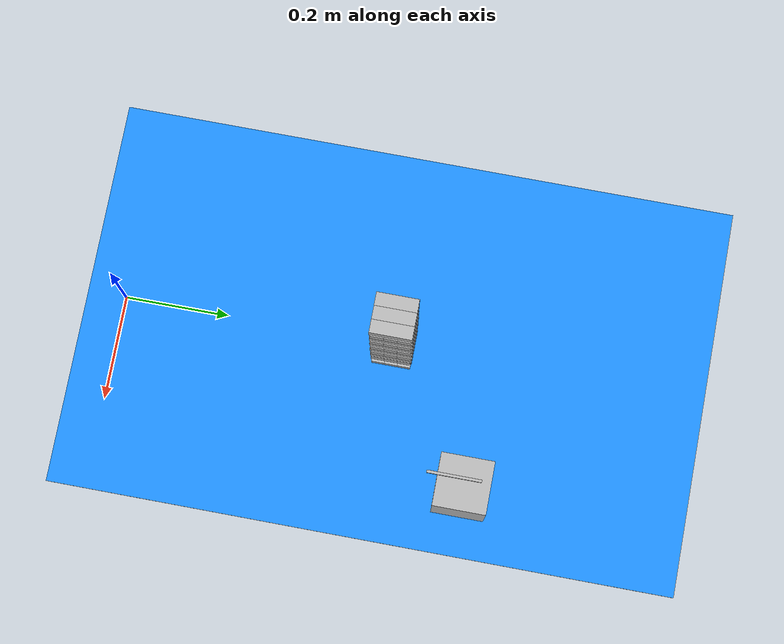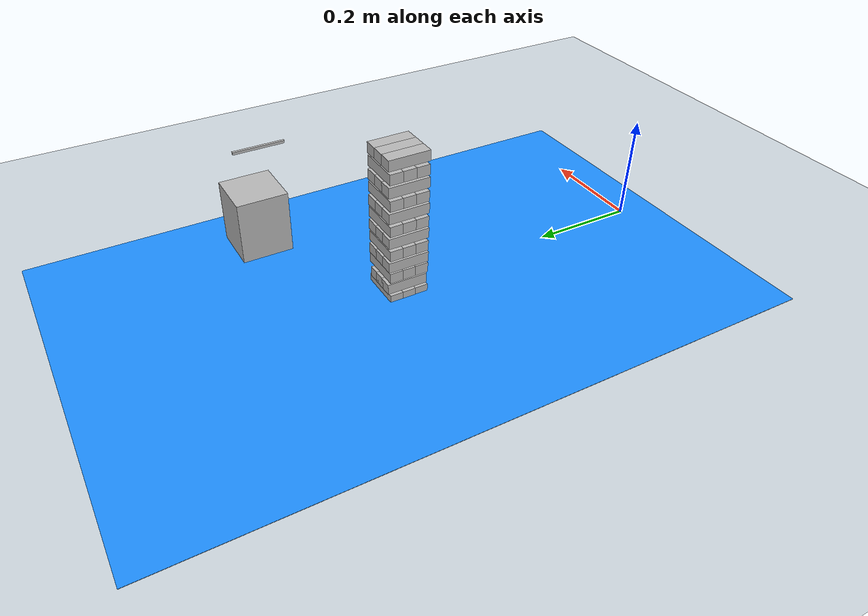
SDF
<sdf version='1.6'>
  <world name='default'>
    <plugin name="ros_link_attacher_plugin" filename="libgazebo_ros_link_attacher.so"/>

    <light name='sun' type='directional'>
      <cast_shadows>1</cast_shadows>
      <pose frame=''>0 0 10 0 -0 0</pose>
      <diffuse>0.8 0.8 0.8 1</diffuse>
      <specular>0.2 0.2 0.2 1</specular>
      <attenuation>
        <range>1000</range>
        <constant>0.9</constant>
        <linear>0.01</linear>
        <quadratic>0.001</quadratic>
      </attenuation>
      <direction>-0.5 0.1 -0.9</direction>
    </light>

    <model name='ground_plane'>
      <static>1</static>
      <link name='link'>
        <collision name='collision'>
          <geometry>
            <plane>
              <normal>0 0 1</normal>
              <size>100 100</size>
            </plane>
          </geometry>
          <surface>s
            <contact>
              <collide_bitmask>65535</collide_bitmask>
              <ode/>
            </contact>
            <friction>
              <ode>
                <mu>100</mu>
                <mu2>50</mu2>
              </ode>
              <torsional>
                <ode/>
              </torsional>
            </friction>
            <bounce/>
          </surface>
          <max_contacts>10</max_contacts>
        </collision>
        <visual name='visual'>
          <cast_shadows>0</cast_shadows>
          <geometry>
            <plane>
              <normal>0 0 1</normal>
              <size>5 5</size>
            </plane>
          </geometry>
          <material>
            <lighting>1</lighting>
            <shader type='vertex'>
              <normal_map>__default__</normal_map>
            </shader>
            <ambient>0.43 0.5 0.56 1</ambient>
            <diffuse>0.43 0.5 0.56 1</diffuse>
            <specular>0.01 0.01 0.01 1</specular>
            <emissive>0 0 0 1</emissive>
          </material>
        </visual>
        <self_collide>0</self_collide>
        <enable_wind>0</enable_wind>
        <kinematic>0</kinematic>
      </link>
    </model>

    <gravity>0 0 -9.8</gravity>
    <magnetic_field>6e-06 2.3e-05 -4.2e-05</magnetic_field>
    <atmosphere type='adiabatic'/>
    <physics name='default_physics' default='0' type='ode'>
      <max_step_size>0.001</max_step_size>
      <real_time_factor>1</real_time_factor>
      <real_time_update_rate>1000</real_time_update_rate>
    </physics>
    <scene>
      <ambient>0.4 0.4 0.4 1</ambient>
      <background>0.7 0.7 0.7 1</background>
      <shadows>1</shadows>
    </scene>
    <audio>
      <device>default</device>
    </audio>
    <wind/>
    <spherical_coordinates>
      <surface_model>EARTH_WGS84</surface_model>
      <latitude_deg>0</latitude_deg>
      <longitude_deg>0</longitude_deg>
      <elevation>0</elevation>
      <heading_deg>0</heading_deg>
    </spherical_coordinates>

    <!-- The table top of the robot -->
    <model name='table'>
      <link name='link'>
        <inertial>
          <mass>1</mass>
          <inertia>
            <ixx>0.166667</ixx>
            <ixy>0</ixy>
            <ixz>0</ixz>
            <iyy>0.166667</iyy>
            <iyz>0</iyz>
            <izz>0.166667</izz>
          </inertia>
          <pose frame=''>0 0 0 0 -0 0</pose>
        </inertial>
        <pose frame=''>0 0 0 0 -0 0</pose>
        <gravity>1</gravity>
        <self_collide>0</self_collide>
        <kinematic>0</kinematic>
        <enable_wind>0</enable_wind>
        <visual name='visual'>
          <pose frame=''>0 0 0 0 -0 0</pose>
          <geometry>
            <box>
              <size>0.75 1.20 0.001</size>
            </box>
          </geometry>
          <material>
            <lighting>1</lighting>
            <shader type='vertex'>
              <normal_map>__default__</normal_map>
            </shader>
            <ambient>0.12 0.56 1 1</ambient>
            <diffuse>0.12 0.56 1 1</diffuse>
            <specular>0.01 0.01 0.01 1</specular>
            <emissive>0 0 0 1</emissive>
          </material>
          <transparency>0</transparency>
          <cast_shadows>1</cast_shadows>
        </visual>
        <collision name='collision'>
          <pose frame=''>0 0 0 0 -0 0</pose>
          <geometry>
            <box>
              <size>0.75 1.20 0.001</size>
            </box>
          </geometry>
        </collision>
      </link>
      <static>1</static>
      <allow_auto_disable>1</allow_auto_disable>
      <pose frame=''>0 0.525 0.0005 0 -0 0</pose>
    </model>

    <model name="block_a_1">
    <link name="link">
      <pose>0 0.5 0.005 0 0 0</pose>
      <inertial>
        <mass>0.0125</mass>
        <inertia>
          <ixx>7.552083333333335e-07</ixx>
          <ixy>0</ixy>
          <ixz>0</ixz>
          <iyy>1.0520833333333334e-05</iyy>
          <iyz>0</iyz>
          <izz>1.1067708333333336e-05</izz>
        </inertia>
      </inertial>

      <collision name="collision">
        <geometry>
          <box>
            <size>0.078 0.025 0.02</size>
          </box>
        </geometry>
        <surface>
          <contact>
            <!-- Red Pine coefficients for longitudinal axis of the wood
                 according to:
                 http://www.fpl.fs.fed.us/documnts/fplgtr/fplgtr113/ch04.pdf -->
            <poissons_ratio>0.347</poissons_ratio>
            <elastic_modulus>8.8e+09</elastic_modulus>
            <ode>
              <kp>100000</kp>
              <kd>1</kd>
              <max_vel>1.0</max_vel>
              <min_depth>0.001</min_depth>
            </ode>
          </contact>
          <friction>
            <torsional>
              <coefficient>1.0</coefficient>
              <use_patch_radius>0</use_patch_radius>
              <surface_radius>0.05</surface_radius>
            </torsional>
          </friction>
        </surface>
      </collision>

      <visual name="visual">
        <geometry>
          <box>
            <size>0.078 0.025 0.02</size>
          </box>
        </geometry>
      </visual>

    </link>
  </model>

  <model name="block_a_2">
    <link name="link">
      <pose>0 0.525 0.005 0 0 0</pose>
      <inertial>
        <mass>0.0125</mass>
        <inertia>
          <ixx>7.552083333333335e-07</ixx>
          <ixy>0</ixy>
          <ixz>0</ixz>
          <iyy>1.0520833333333334e-05</iyy>
          <iyz>0</iyz>
          <izz>1.1067708333333336e-05</izz>
        </inertia>
      </inertial>

      <collision name="collision">
        <geometry>
          <box>
            <size>0.078 0.025 0.02</size>
          </box>
        </geometry>
        <surface>
          <contact>
            <!-- Red Pine coefficients for longitudinal axis of the wood
                 according to:
                 http://www.fpl.fs.fed.us/documnts/fplgtr/fplgtr113/ch04.pdf -->
            <poissons_ratio>0.347</poissons_ratio>
            <elastic_modulus>8.8e+09</elastic_modulus>
            <ode>
              <kp>100000</kp>
              <kd>1</kd>
              <max_vel>1.0</max_vel>
              <min_depth>0.001</min_depth>
            </ode>
          </contact>
          <friction>
            <torsional>
              <coefficient>1.0</coefficient>
              <use_patch_radius>0</use_patch_radius>
              <surface_radius>0.05</surface_radius>
            </torsional>
          </friction>
        </surface>
      </collision>

      <visual name="visual">
        <geometry>
          <box>
            <size>0.078 0.025 0.02</size>
          </box>
        </geometry>
      </visual>

    </link>
  </model>

  <model name="block_a_3">
    <link name="link">
      <pose>0 0.55 0.005 0 0 0</pose>
      <inertial>
        <mass>0.0125</mass>
        <inertia>
          <ixx>7.552083333333335e-07</ixx>
          <ixy>0</ixy>
          <ixz>0</ixz>
          <iyy>1.0520833333333334e-05</iyy>
          <iyz>0</iyz>
          <izz>1.1067708333333336e-05</izz>
        </inertia>
      </inertial>

      <collision name="collision">
        <geometry>
          <box>
            <size>0.078 0.025 0.02</size>
          </box>
        </geometry>
        <surface>
          <contact>
            <!-- Red Pine coefficients for longitudinal axis of the wood
                 according to:
                 http://www.fpl.fs.fed.us/documnts/fplgtr/fplgtr113/ch04.pdf -->
            <poissons_ratio>0.347</poissons_ratio>
            <elastic_modulus>8.8e+09</elastic_modulus>
            <ode>
              <kp>100000</kp>
              <kd>1</kd>
              <max_vel>1.0</max_vel>
              <min_depth>0.001</min_depth>
            </ode>
          </contact>
          <friction>
            <torsional>
              <coefficient>1.0</coefficient>
              <use_patch_radius>0</use_patch_radius>
              <surface_radius>0.05</surface_radius>
            </torsional>
          </friction>
        </surface>
      </collision>

      <visual name="visual">
        <geometry>
          <box>
            <size>0.078 0.025 0.02</size>
          </box>
        </geometry>
      </visual>

    </link>
  </model>

<!-- SECOND LAYER-->

  <model name="block_b_1">
    <link name="link">
      <pose>0 0.525 0.025 0 0 0</pose>
      <inertial>
        <mass>0.0125</mass>
        <inertia>
          <ixx>7.552083333333335e-07</ixx>
          <ixy>0</ixy>
          <ixz>0</ixz>
          <iyy>1.0520833333333334e-05</iyy>
          <iyz>0</iyz>
          <izz>1.1067708333333336e-05</izz>
        </inertia>
      </inertial>

      <collision name="collision">
        <geometry>
          <box>
            <size> 0.025 0.078  0.02</size>
          </box>
        </geometry>
        <surface>
          <contact>
            <poissons_ratio>0.347</poissons_ratio>
            <elastic_modulus>8.8e+09</elastic_modulus>
            <ode>
              <kp>100000</kp>
              <kd>1</kd>
              <max_vel>1.0</max_vel>
              <min_depth>0.001</min_depth>
            </ode>
          </contact>
          <friction>
            <torsional>
              <coefficient>1.0</coefficient>
              <use_patch_radius>0</use_patch_radius>
              <surface_radius>0.05</surface_radius>
            </torsional>
          </friction>
        </surface>
      </collision>

      <visual name="visual">
        <geometry>
          <box>
            <size>0.025 0.078  0.02</size>
          </box>
        </geometry>
      </visual>

    </link>
  </model>

  <model name="block_b_2">
    <link name="link">
      <pose>-0.02 0.525 0.025 0 0 0</pose>
      <inertial>
        <mass>0.0125</mass>
        <inertia>
          <ixx>7.552083333333335e-07</ixx>
          <ixy>0</ixy>
          <ixz>0</ixz>
          <iyy>1.0520833333333334e-05</iyy>
          <iyz>0</iyz>
          <izz>1.1067708333333336e-05</izz>
        </inertia>
      </inertial>

      <collision name="collision">
        <geometry>
          <box>
            <size>0.025 0.078  0.02</size>
          </box>
        </geometry>
        <surface>
          <contact>
            <poissons_ratio>0.347</poissons_ratio>
            <elastic_modulus>8.8e+09</elastic_modulus>
            <ode>
              <kp>100000</kp>
              <kd>1</kd>
              <max_vel>1.0</max_vel>
              <min_depth>0.001</min_depth>
            </ode>
          </contact>
          <friction>
            <torsional>
              <coefficient>1.0</coefficient>
              <use_patch_radius>0</use_patch_radius>
              <surface_radius>0.05</surface_radius>
            </torsional>
          </friction>
        </surface>
      </collision>

      <visual name="visual">
        <geometry>
          <box>
            <size>0.025 0.078  0.02</size>
          </box>
        </geometry>
      </visual>

    </link>
  </model>

  <model name="block_b_3">
    <link name="link">
      <pose>0.02 0.525 0.025 0 0 0</pose>
      <inertial>
        <mass>0.0125</mass>
        <inertia>
          <ixx>7.552083333333335e-07</ixx>
          <ixy>0</ixy>
          <ixz>0</ixz>
          <iyy>1.0520833333333334e-05</iyy>
          <iyz>0</iyz>
          <izz>1.1067708333333336e-05</izz>
        </inertia>
      </inertial>

      <collision name="collision">
        <geometry>
          <box>
            <size>0.025 0.078  0.02</size>
          </box>
        </geometry>
        <surface>
          <contact>
            <poissons_ratio>0.347</poissons_ratio>
            <elastic_modulus>8.8e+09</elastic_modulus>
            <ode>
              <kp>100000</kp>
              <kd>1</kd>
              <max_vel>1.0</max_vel>
              <min_depth>0.001</min_depth>
            </ode>
          </contact>
          <friction>
            <torsional>
              <coefficient>1.0</coefficient>
              <use_patch_radius>0</use_patch_radius>
              <surface_radius>0.05</surface_radius>
            </torsional>
          </friction>
        </surface>
      </collision>

      <visual name="visual">
        <geometry>
          <box>
            <size>0.025 0.078  0.02</size>
          </box>
        </geometry>
      </visual>

    </link>
  </model>
  <model name="block_c_1">
    <link name="link">
      <pose>0 0.5 0.053 0 0 0</pose>
      <inertial>
        <mass>0.0125</mass>
        <inertia>
          <ixx>7.552083333333335e-07</ixx>
          <ixy>0</ixy>
          <ixz>0</ixz>
          <iyy>1.0520833333333334e-05</iyy>
          <iyz>0</iyz>
          <izz>1.1067708333333336e-05</izz>
        </inertia>
      </inertial>

      <collision name="collision">
        <geometry>
          <box>
            <size>0.078 0.025 0.02</size>
          </box>
        </geometry>
        <surface>
          <contact>
            <!-- Red Pine coefficients for longitudinal axis of the wood
                 according to:
                 http://www.fpl.fs.fed.us/documnts/fplgtr/fplgtr113/ch04.pdf -->
            <poissons_ratio>0.347</poissons_ratio>
            <elastic_modulus>8.8e+09</elastic_modulus>
            <ode>
              <kp>100000</kp>
              <kd>1</kd>
              <max_vel>1.0</max_vel>
              <min_depth>0.001</min_depth>
            </ode>
          </contact>
          <friction>
            <torsional>
              <coefficient>1.0</coefficient>
              <use_patch_radius>0</use_patch_radius>
              <surface_radius>0.05</surface_radius>
            </torsional>
          </friction>
        </surface>
      </collision>

      <visual name="visual">
        <geometry>
          <box>
            <size>0.078 0.025 0.02</size>
          </box>
        </geometry>
      </visual>

    </link>
  </model>

  <model name="block_c_2">
    <link name="link">
      <pose>0 0.525 0.053 0 0 0</pose>
      <inertial>
        <mass>0.0125</mass>
        <inertia>
          <ixx>7.552083333333335e-07</ixx>
          <ixy>0</ixy>
          <ixz>0</ixz>
          <iyy>1.0520833333333334e-05</iyy>
          <iyz>0</iyz>
          <izz>1.1067708333333336e-05</izz>
        </inertia>
      </inertial>

      <collision name="collision">
        <geometry>
          <box>
            <size>0.078 0.025 0.02</size>
          </box>
        </geometry>
        <surface>
          <contact>
            <!-- Red Pine coefficients for longitudinal axis of the wood
                 according to:
                 http://www.fpl.fs.fed.us/documnts/fplgtr/fplgtr113/ch04.pdf -->
            <poissons_ratio>0.347</poissons_ratio>
            <elastic_modulus>8.8e+09</elastic_modulus>
            <ode>
              <kp>100000</kp>
              <kd>1</kd>
              <max_vel>1.0</max_vel>
              <min_depth>0.001</min_depth>
            </ode>
          </contact>
          <friction>
            <torsional>
              <coefficient>1.0</coefficient>
              <use_patch_radius>0</use_patch_radius>
              <surface_radius>0.05</surface_radius>
            </torsional>
          </friction>
        </surface>
      </collision>

      <visual name="visual">

        <geometry>
          <box>
            <size>0.078 0.025 0.02</size>
          </box>
        </geometry>
      </visual>

    </link>
  </model>

  <model name="block_c_3">
    <link name="link">
      <pose>0 0.55 0.053 0 0 0</pose>
      <inertial>
        <mass>0.0125</mass>
        <inertia>
          <ixx>7.552083333333335e-07</ixx>
          <ixy>0</ixy>
          <ixz>0</ixz>
          <iyy>1.0520833333333334e-05</iyy>
          <iyz>0</iyz>
          <izz>1.1067708333333336e-05</izz>
        </inertia>
      </inertial>

      <collision name="collision">
        <geometry>
          <box>
            <size>0.078 0.025 0.02</size>
          </box>
        </geometry>
        <surface>
          <contact>
            <!-- Red Pine coefficients for longitudinal axis of the wood
                 according to:
                 http://www.fpl.fs.fed.us/documnts/fplgtr/fplgtr113/ch04.pdf -->
            <poissons_ratio>0.347</poissons_ratio>
            <elastic_modulus>8.8e+09</elastic_modulus>
            <ode>
              <kp>100000</kp>
              <kd>1</kd>
              <max_vel>1.0</max_vel>
              <min_depth>0.001</min_depth>
            </ode>
          </contact>
          <friction>
            <torsional>
              <coefficient>1.0</coefficient>
              <use_patch_radius>0</use_patch_radius>
              <surface_radius>0.05</surface_radius>
            </torsional>
          </friction>
        </surface>
      </collision>

      <visual name="visual">
        <geometry>
          <box>
            <size>0.078 0.025 0.02</size>
          </box>
        </geometry>
      </visual>

    </link>
  </model>

<model name="block_d_1">
    <link name="link">
      <pose>0 0.525 0.075 0 0 0</pose>
      <inertial>
        <mass>0.0125</mass>
        <inertia>
          <ixx>7.552083333333335e-07</ixx>
          <ixy>0</ixy>
          <ixz>0</ixz>
          <iyy>1.0520833333333334e-05</iyy>
          <iyz>0</iyz>
          <izz>1.1067708333333336e-05</izz>
        </inertia>
      </inertial>

      <collision name="collision">
        <geometry>
          <box>
            <size> 0.025 0.078  0.02</size>
          </box>
        </geometry>
        <surface>
          <contact>
            <poissons_ratio>0.347</poissons_ratio>
            <elastic_modulus>8.8e+09</elastic_modulus>
            <ode>
              <kp>100000</kp>
              <kd>1</kd>
              <max_vel>1.0</max_vel>
              <min_depth>0.001</min_depth>
            </ode>
          </contact>
          <friction>
            <torsional>
              <coefficient>1.0</coefficient>
              <use_patch_radius>0</use_patch_radius>
              <surface_radius>0.05</surface_radius>
            </torsional>
          </friction>
        </surface>
      </collision>

      <visual name="visual">
        <geometry>
          <box>
            <size>0.025 0.078  0.02</size>
          </box>
        </geometry>
      </visual>

    </link>
  </model>

  <model name="block_d_2">
    <link name="link">
      <pose>-0.025 0.525 0.075 0 0 0</pose>
      <inertial>
        <mass>0.0125</mass>
        <inertia>
          <ixx>7.552083333333335e-07</ixx>
          <ixy>0</ixy>
          <ixz>0</ixz>
          <iyy>1.0520833333333334e-05</iyy>
          <iyz>0</iyz>
          <izz>1.1067708333333336e-05</izz>
        </inertia>
      </inertial>

      <collision name="collision">
        <geometry>
          <box>
            <size>0.025 0.078  0.02</size>
          </box>
        </geometry>
        <surface>
          <contact>
            <poissons_ratio>0.347</poissons_ratio>
            <elastic_modulus>8.8e+09</elastic_modulus>
            <ode>
              <kp>100000</kp>
              <kd>1</kd>
              <max_vel>1.0</max_vel>
              <min_depth>0.001</min_depth>
            </ode>
          </contact>
          <friction>
            <torsional>
              <coefficient>1.0</coefficient>
              <use_patch_radius>0</use_patch_radius>
              <surface_radius>0.05</surface_radius>
            </torsional>
          </friction>
        </surface>
      </collision>

      <visual name="visual">
        <geometry>
          <box>
            <size>0.025 0.078  0.02</size>
          </box>
        </geometry>
      </visual>

    </link>
  </model>

  <model name="block_d_3">
    <link name="link">
      <pose>0.025 0.525 0.075 0 0 0</pose>
      <inertial>
        <mass>0.0125</mass>
        <inertia>
          <ixx>7.552083333333335e-07</ixx>
          <ixy>0</ixy>
          <ixz>0</ixz>
          <iyy>1.0520833333333334e-05</iyy>
          <iyz>0</iyz>
          <izz>1.1067708333333336e-05</izz>
        </inertia>
      </inertial>

      <collision name="collision">
        <geometry>
          <box>
            <size>0.025 0.078  0.02</size>
          </box>
        </geometry>
        <surface>
          <contact>
            <poissons_ratio>0.347</poissons_ratio>
            <elastic_modulus>8.8e+09</elastic_modulus>
            <ode>
              <kp>100000</kp>
              <kd>1</kd>
              <max_vel>1.0</max_vel>
              <min_depth>0.001</min_depth>
            </ode>
          </contact>
          <friction>
            <torsional>
              <coefficient>1.0</coefficient>
              <use_patch_radius>0</use_patch_radius>
              <surface_radius>0.05</surface_radius>
            </torsional>
          </friction>
        </surface>
      </collision>

      <visual name="visual">
        <geometry>
          <box>
            <size>0.025 0.078  0.02</size>
          </box>
        </geometry>
      </visual>

    </link>
  </model>

  <model name="block_e_1">
    <link name="link">
      <pose>0 0.5 0.1 0 0 0</pose>
      <inertial>
        <mass>0.0125</mass>
        <inertia>
          <ixx>7.552083333333335e-07</ixx>
          <ixy>0</ixy>
          <ixz>0</ixz>
          <iyy>1.0520833333333334e-05</iyy>
          <iyz>0</iyz>
          <izz>1.1067708333333336e-05</izz>
        </inertia>
      </inertial>

      <collision name="collision">
        <geometry>
          <box>
            <size>0.078 0.023 0.018</size>
          </box>
        </geometry>
        <surface>
          <contact>
            <!-- Red Pine coefficients for longitudinal axis of the wood
                 according to:
                 http://www.fpl.fs.fed.us/documnts/fplgtr/fplgtr113/ch04.pdf -->
            <poissons_ratio>0.347</poissons_ratio>
            <elastic_modulus>8.8e+09</elastic_modulus>
            <ode>
              <kp>100000</kp>
              <kd>1</kd>
              <max_vel>1.0</max_vel>
              <min_depth>0.001</min_depth>
            </ode>
          </contact>
          <friction>
            <torsional>
              <coefficient>1.0</coefficient>
              <use_patch_radius>0</use_patch_radius>
              <surface_radius>0.05</surface_radius>
            </torsional>
          </friction>
        </surface>
      </collision>

      <visual name="visual">
	<material>
                <script>

                    <name>RepeatedTexture2</name>
        	</script>
        </material>
        <geometry>
          <box>
            <size>0.078 0.025 0.020</size>
          </box>
        </geometry>
      </visual>

    </link>
  </model>

  <model name="block_e_2">
    <link name="link">
      <pose>0 0.525 0.1 0 0 0</pose>
      <inertial>
        <mass>0.0125</mass>
        <inertia>
          <ixx>7.552083333333335e-07</ixx>
          <ixy>0</ixy>
          <ixz>0</ixz>
          <iyy>1.0520833333333334e-05</iyy>
          <iyz>0</iyz>
          <izz>1.1067708333333336e-05</izz>
        </inertia>
      </inertial>

      <collision name="collision">
        <geometry>
          <box>
            <size>0.078 0.025 0.02</size>
          </box>
        </geometry>
        <surface>
          <contact>
            <!-- Red Pine coefficients for longitudinal axis of the wood
                 according to:
                 http://www.fpl.fs.fed.us/documnts/fplgtr/fplgtr113/ch04.pdf -->
            <poissons_ratio>0.347</poissons_ratio>
            <elastic_modulus>8.8e+09</elastic_modulus>
            <ode>
              <kp>100000</kp>
              <kd>1</kd>
              <max_vel>1.0</max_vel>
              <min_depth>0.001</min_depth>
            </ode>
          </contact>
          <friction>
            <torsional>
              <coefficient>1.0</coefficient>
              <use_patch_radius>0</use_patch_radius>
              <surface_radius>0.05</surface_radius>
            </torsional>
          </friction>
        </surface>
      </collision>

      <visual name="visual">
        <geometry>
          <box>
            <size>0.078 0.025 0.02</size>
          </box>
        </geometry>
      </visual>

    </link>
  </model>

  <model name="block_e_3">
    <link name="link">
      <pose>0 0.55 0.1 0 0 0</pose>
      <inertial>
        <mass>0.0125</mass>
        <inertia>
          <ixx>7.552083333333335e-07</ixx>
          <ixy>0</ixy>
          <ixz>0</ixz>
          <iyy>1.0520833333333334e-05</iyy>
          <iyz>0</iyz>
          <izz>1.1067708333333336e-05</izz>
        </inertia>
      </inertial>

      <collision name="collision">
        <geometry>
          <box>
            <size>0.078 0.025 0.02</size>
          </box>
        </geometry>
        <surface>
          <contact>
            <!-- Red Pine coefficients for longitudinal axis of the wood
                 according to:
                 http://www.fpl.fs.fed.us/documnts/fplgtr/fplgtr113/ch04.pdf -->
            <poissons_ratio>0.347</poissons_ratio>
            <elastic_modulus>8.8e+09</elastic_modulus>
            <ode>
              <kp>100000</kp>
              <kd>1</kd>
              <max_vel>1.0</max_vel>
              <min_depth>0.001</min_depth>
            </ode>
          </contact>
          <friction>
            <torsional>
              <coefficient>1.0</coefficient>
              <use_patch_radius>0</use_patch_radius>
              <surface_radius>0.05</surface_radius>
            </torsional>
          </friction>
        </surface>
      </collision>

      <visual name="visual">
        <geometry>
          <box>
            <size>0.078 0.025 0.02</size>
          </box>
        </geometry>
      </visual>

    </link>
  </model>

  <model name="block_f_1">
    <link name="link">
      <pose>0 0.525 0.125 0 0 0</pose>
      <inertial>
        <mass>0.0125</mass>
        <inertia>
          <ixx>7.552083333333335e-07</ixx>
          <ixy>0</ixy>
          <ixz>0</ixz>
          <iyy>1.0520833333333334e-05</iyy>
          <iyz>0</iyz>
          <izz>1.1067708333333336e-05</izz>
        </inertia>
      </inertial>

      <collision name="collision">
        <geometry>
          <box>
            <size> 0.025 0.078  0.02</size>
          </box>
        </geometry>
        <surface>
          <contact>
            <poissons_ratio>0.347</poissons_ratio>
            <elastic_modulus>8.8e+09</elastic_modulus>
            <ode>
              <kp>100000</kp>
              <kd>1</kd>
              <max_vel>1.0</max_vel>
              <min_depth>0.001</min_depth>
            </ode>
          </contact>
          <friction>
            <torsional>
              <coefficient>1.0</coefficient>
              <use_patch_radius>0</use_patch_radius>
              <surface_radius>0.05</surface_radius>
            </torsional>
          </friction>
        </surface>
      </collision>

      <visual name="visual">
        <geometry>
          <box>
            <size>0.025 0.078  0.02</size>
          </box>
        </geometry>
      </visual>

    </link>
  </model>

  <model name="block_f_2">
    <link name="link">
      <pose>-0.025 0.525 0.125 0 0 0</pose>
      <inertial>
        <mass>0.0125</mass>
        <inertia>
          <ixx>7.552083333333335e-07</ixx>
          <ixy>0</ixy>
          <ixz>0</ixz>
          <iyy>1.0520833333333334e-05</iyy>
          <iyz>0</iyz>
          <izz>1.1067708333333336e-05</izz>
        </inertia>
      </inertial>

      <collision name="collision">
        <geometry>
          <box>
            <size>0.025 0.078  0.02</size>
          </box>
        </geometry>
        <surface>
          <contact>
            <poissons_ratio>0.347</poissons_ratio>
            <elastic_modulus>8.8e+09</elastic_modulus>
            <ode>
              <kp>100000</kp>
              <kd>1</kd>
              <max_vel>1.0</max_vel>
              <min_depth>0.001</min_depth>
            </ode>
          </contact>
          <friction>
            <torsional>
              <coefficient>1.0</coefficient>
              <use_patch_radius>0</use_patch_radius>
              <surface_radius>0.05</surface_radius>
            </torsional>
          </friction>
        </surface>
      </collision>

      <visual name="visual">
        <geometry>
          <box>
            <size>0.025 0.078  0.02</size>
          </box>
        </geometry>
      </visual>

    </link>
  </model>

  <model name="block_f_3">
    <link name="link">
      <pose>0.025 0.525 0.125 0 0 0</pose>
      <inertial>
        <mass>0.0125</mass>
        <inertia>
          <ixx>7.552083333333335e-07</ixx>
          <ixy>0</ixy>
          <ixz>0</ixz>
          <iyy>1.0520833333333334e-05</iyy>
          <iyz>0</iyz>
          <izz>1.1067708333333336e-05</izz>
        </inertia>
      </inertial>

      <collision name="collision">
        <geometry>
          <box>
            <size>0.025 0.078  0.02</size>
          </box>
        </geometry>
        <surface>
          <contact>
            <poissons_ratio>0.347</poissons_ratio>
            <elastic_modulus>8.8e+09</elastic_modulus>
            <ode>
              <kp>100000</kp>
              <kd>1</kd>
              <max_vel>1.0</max_vel>
              <min_depth>0.001</min_depth>
            </ode>
          </contact>
          <friction>
            <torsional>
              <coefficient>1.0</coefficient>
              <use_patch_radius>0</use_patch_radius>
              <surface_radius>0.05</surface_radius>
            </torsional>
          </friction>
        </surface>
      </collision>

      <visual name="visual">
        <geometry>
          <box>
            <size>0.025 0.078  0.02</size>
          </box>
        </geometry>
      </visual>

    </link>
  </model>

  <model name="block_g_1">
    <link name="link">
      <pose>0 0.5 0.150 0 0 0</pose>
      <inertial>
        <mass>0.0125</mass>
        <inertia>
          <ixx>7.552083333333335e-07</ixx>
          <ixy>0</ixy>
          <ixz>0</ixz>
          <iyy>1.0520833333333334e-05</iyy>
          <iyz>0</iyz>
          <izz>1.1067708333333336e-05</izz>
        </inertia>
      </inertial>

      <collision name="collision">
        <geometry>
          <box>
            <size>0.078 0.025 0.02</size>
          </box>
        </geometry>
        <surface>
          <contact>
            <!-- Red Pine coefficients for longitudinal axis of the wood
                 according to:
                 http://www.fpl.fs.fed.us/documnts/fplgtr/fplgtr113/ch04.pdf -->
            <poissons_ratio>0.347</poissons_ratio>
            <elastic_modulus>8.8e+09</elastic_modulus>
            <ode>
              <kp>100000</kp>
              <kd>1</kd>
              <max_vel>1.0</max_vel>
              <min_depth>0.001</min_depth>
            </ode>
          </contact>
          <friction>
            <torsional>
              <coefficient>1.0</coefficient>
              <use_patch_radius>0</use_patch_radius>
              <surface_radius>0.05</surface_radius>
            </torsional>
          </friction>
        </surface>
      </collision>

      <visual name="visual">
        <geometry>
          <box>
            <size>0.078 0.025 0.02</size>
          </box>
        </geometry>
      </visual>

    </link>
  </model>

  <model name="block_g_2">
    <link name="link">
      <pose>0 0.525 0.150 0 0 0</pose>
      <inertial>
        <mass>0.0125</mass>
        <inertia>
          <ixx>7.552083333333335e-07</ixx>
          <ixy>0</ixy>
          <ixz>0</ixz>
          <iyy>1.0520833333333334e-05</iyy>
          <iyz>0</iyz>
          <izz>1.1067708333333336e-05</izz>
        </inertia>
      </inertial>

      <collision name="collision">
        <geometry>
          <box>
            <size>0.078 0.023 0.018</size>
          </box>
        </geometry>
        <surface>
          <contact>
            <!-- Red Pine coefficients for longitudinal axis of the wood
                 according to:
                 http://www.fpl.fs.fed.us/documnts/fplgtr/fplgtr113/ch04.pdf -->
            <poissons_ratio>0.347</poissons_ratio>
            <elastic_modulus>8.8e+09</elastic_modulus>
            <ode>
              <kp>100000</kp>
              <kd>1</kd>
              <max_vel>1.0</max_vel>
              <min_depth>0.001</min_depth>
            </ode>
          </contact>
          <friction>
            <torsional>
              <coefficient>1.0</coefficient>
              <use_patch_radius>0</use_patch_radius>
              <surface_radius>0.05</surface_radius>
            </torsional>
          </friction>
        </surface>
      </collision>

      <visual name="visual">
	<material>
                <script>

                    <name>RepeatedTexture</name>
        	</script>
        </material>
        <geometry>
          <box>
            <size>0.078 0.025 0.020</size>
          </box>
        </geometry>
      </visual>

    </link>
  </model>

  <model name="block_g_3">
    <link name="link">
      <pose>0 0.55 0.150 0 0 0</pose>
      <inertial>
        <mass>0.0125</mass>
        <inertia>
          <ixx>7.552083333333335e-07</ixx>
          <ixy>0</ixy>
          <ixz>0</ixz>
          <iyy>1.0520833333333334e-05</iyy>
          <iyz>0</iyz>
          <izz>1.1067708333333336e-05</izz>
        </inertia>
      </inertial>

      <collision name="collision">
        <geometry>
          <box>
            <size>0.078 0.025 0.02</size>
          </box>
        </geometry>
        <surface>
          <contact>
            <!-- Red Pine coefficients for longitudinal axis of the wood
                 according to:
                 http://www.fpl.fs.fed.us/documnts/fplgtr/fplgtr113/ch04.pdf -->
            <poissons_ratio>0.347</poissons_ratio>
            <elastic_modulus>8.8e+09</elastic_modulus>
            <ode>
              <kp>100000</kp>
              <kd>1</kd>
              <max_vel>1.0</max_vel>
              <min_depth>0.001</min_depth>
            </ode>
          </contact>
          <friction>
            <torsional>
              <coefficient>1.0</coefficient>
              <use_patch_radius>0</use_patch_radius>
              <surface_radius>0.05</surface_radius>
            </torsional>
          </friction>
        </surface>
      </collision>

      <visual name="visual">
        <geometry>
          <box>
            <size>0.078 0.025 0.02</size>
          </box>
        </geometry>
      </visual>

    </link>
  </model>

  <model name="block_h_1">
    <link name="link">
      <pose>0 0.525 0.175 0 0 0</pose>
      <inertial>
        <mass>0.0125</mass>
        <inertia>
          <ixx>7.552083333333335e-07</ixx>
          <ixy>0</ixy>
          <ixz>0</ixz>
          <iyy>1.0520833333333334e-05</iyy>
          <iyz>0</iyz>
          <izz>1.1067708333333336e-05</izz>
        </inertia>
      </inertial>

      <collision name="collision">
        <geometry>
          <box>
            <size> 0.025 0.078  0.02</size>
          </box>
        </geometry>
        <surface>
          <contact>
            <poissons_ratio>0.347</poissons_ratio>
            <elastic_modulus>8.8e+09</elastic_modulus>
            <ode>
              <kp>100000</kp>
              <kd>1</kd>
              <max_vel>1.0</max_vel>
              <min_depth>0.001</min_depth>
            </ode>
          </contact>
          <friction>
            <torsional>
              <coefficient>1.0</coefficient>
              <use_patch_radius>0</use_patch_radius>
              <surface_radius>0.05</surface_radius>
            </torsional>
          </friction>
        </surface>
      </collision>

      <visual name="visual">
        <geometry>
          <box>
            <size>0.025 0.078  0.02</size>
          </box>
        </geometry>
      </visual>

    </link>
  </model>

  <model name="block_h_2">
    <link name="link">
      <pose>-0.025 0.525 0.175 0 0 0</pose>
      <inertial>
        <mass>0.0125</mass>
        <inertia>
          <ixx>7.552083333333335e-07</ixx>
          <ixy>0</ixy>
          <ixz>0</ixz>
          <iyy>1.0520833333333334e-05</iyy>
          <iyz>0</iyz>
          <izz>1.1067708333333336e-05</izz>
        </inertia>
      </inertial>

      <collision name="collision">
        <geometry>
          <box>
            <size>0.025 0.078  0.02</size>
          </box>
        </geometry>
        <surface>
          <contact>
            <poissons_ratio>0.347</poissons_ratio>
            <elastic_modulus>8.8e+09</elastic_modulus>
            <ode>
              <kp>100000</kp>
              <kd>1</kd>
              <max_vel>1.0</max_vel>
              <min_depth>0.001</min_depth>
            </ode>
          </contact>
          <friction>
            <torsional>
              <coefficient>1.0</coefficient>
              <use_patch_radius>0</use_patch_radius>
              <surface_radius>0.05</surface_radius>
            </torsional>
          </friction>
        </surface>
      </collision>

      <visual name="visual">
        <geometry>
          <box>
            <size>0.025 0.078  0.02</size>
          </box>
        </geometry>
      </visual>

    </link>
  </model>

  <model name="block_h_3">
    <link name="link">
      <pose>0.025 0.525 0.175 0 0 0</pose>
      <inertial>
        <mass>0.0125</mass>
        <inertia>
          <ixx>7.552083333333335e-07</ixx>
          <ixy>0</ixy>
          <ixz>0</ixz>
          <iyy>1.0520833333333334e-05</iyy>
          <iyz>0</iyz>
          <izz>1.1067708333333336e-05</izz>
        </inertia>
      </inertial>

      <collision name="collision">
        <geometry>
          <box>
            <size>0.025 0.078  0.02</size>
          </box>
        </geometry>
        <surface>
          <contact>
            <poissons_ratio>0.347</poissons_ratio>
            <elastic_modulus>8.8e+09</elastic_modulus>
            <ode>
              <kp>100000</kp>
              <kd>1</kd>
              <max_vel>1.0</max_vel>
              <min_depth>0.001</min_depth>
            </ode>
          </contact>
          <friction>
            <torsional>
              <coefficient>1.0</coefficient>
              <use_patch_radius>0</use_patch_radius>
              <surface_radius>0.05</surface_radius>
            </torsional>
          </friction>
        </surface>
      </collision>

      <visual name="visual">
        <geometry>
          <box>
            <size>0.025 0.078  0.02</size>
          </box>
        </geometry>
      </visual>

    </link>
  </model>

  <model name="block_i_1">
    <link name="link">
      <pose>0 0.5 0.2 0 0 0</pose>
      <inertial>
        <mass>0.0125</mass>
        <inertia>
          <ixx>7.552083333333335e-07</ixx>
          <ixy>0</ixy>
          <ixz>0</ixz>
          <iyy>1.0520833333333334e-05</iyy>
          <iyz>0</iyz>
          <izz>1.1067708333333336e-05</izz>
        </inertia>
      </inertial>

      <collision name="collision">
        <geometry>
          <box>
            <size>0.078 0.025 0.02</size>
          </box>
        </geometry>
        <surface>
          <contact>
            <!-- Red Pine coefficients for longitudinal axis of the wood
                 according to:
                 http://www.fpl.fs.fed.us/documnts/fplgtr/fplgtr113/ch04.pdf -->
            <poissons_ratio>0.347</poissons_ratio>
            <elastic_modulus>8.8e+09</elastic_modulus>
            <ode>
              <kp>100000</kp>
              <kd>1</kd>
              <max_vel>1.0</max_vel>
              <min_depth>0.001</min_depth>
            </ode>
          </contact>
          <friction>
            <torsional>
              <coefficient>1.0</coefficient>
              <use_patch_radius>0</use_patch_radius>
              <surface_radius>0.05</surface_radius>
            </torsional>
          </friction>
        </surface>
      </collision>

      <visual name="visual">
        <geometry>
          <box>
            <size>0.078 0.025 0.02</size>
          </box>
        </geometry>
      </visual>

    </link>
  </model>

  <model name="block_i_2">
    <link name="link">
      <pose>0 0.525 0.2 0 0 0</pose>
      <inertial>
        <mass>0.0125</mass>
        <inertia>
          <ixx>7.552083333333335e-07</ixx>
          <ixy>0</ixy>
          <ixz>0</ixz>
          <iyy>1.0520833333333334e-05</iyy>
          <iyz>0</iyz>
          <izz>1.1067708333333336e-05</izz>
        </inertia>
      </inertial>

      <collision name="collision">
        <geometry>
          <box>
            <size>0.078 0.025 0.02</size>
          </box>
        </geometry>
        <surface>
          <contact>
            <!-- Red Pine coefficients for longitudinal axis of the wood
                 according to:
                 http://www.fpl.fs.fed.us/documnts/fplgtr/fplgtr113/ch04.pdf -->
            <poissons_ratio>0.347</poissons_ratio>
            <elastic_modulus>8.8e+09</elastic_modulus>
            <ode>
              <kp>100000</kp>
              <kd>1</kd>
              <max_vel>1.0</max_vel>
              <min_depth>0.001</min_depth>
            </ode>
          </contact>
          <friction>
            <torsional>
              <coefficient>1.0</coefficient>
              <use_patch_radius>0</use_patch_radius>
              <surface_radius>0.05</surface_radius>
            </torsional>
          </friction>
        </surface>
      </collision>

      <visual name="visual">
        <geometry>
          <box>
            <size>0.078 0.025 0.02</size>
          </box>
        </geometry>
      </visual>

    </link>
  </model>

  <model name="block_i_3">
    <link name="link">
      <pose>0 0.55 0.2 0 0 0</pose>
      <inertial>
        <mass>0.0125</mass>
        <inertia>
          <ixx>7.552083333333335e-07</ixx>
          <ixy>0</ixy>
          <ixz>0</ixz>
          <iyy>1.0520833333333334e-05</iyy>
          <iyz>0</iyz>
          <izz>1.1067708333333336e-05</izz>
        </inertia>
      </inertial>

      <collision name="collision">
        <geometry>
          <box>
            <size>0.078 0.025 0.02</size>
          </box>
        </geometry>
        <surface>
          <contact>
            <!-- Red Pine coefficients for longitudinal axis of the wood
                 according to:
                 http://www.fpl.fs.fed.us/documnts/fplgtr/fplgtr113/ch04.pdf -->
            <poissons_ratio>0.347</poissons_ratio>
            <elastic_modulus>8.8e+09</elastic_modulus>
            <ode>
              <kp>100000</kp>
              <kd>1</kd>
              <max_vel>1.0</max_vel>
              <min_depth>0.001</min_depth>
            </ode>
          </contact>
          <friction>
            <torsional>
              <coefficient>1.0</coefficient>
              <use_patch_radius>0</use_patch_radius>
              <surface_radius>0.05</surface_radius>
            </torsional>
          </friction>
        </surface>
      </collision>

      <visual name="visual">
        <geometry>
          <box>
            <size>0.078 0.025 0.02</size>
          </box>
        </geometry>
      </visual>

    </link>
  </model>

  <model name="block_j_1">
    <link name="link">
      <pose>0 0.525 0.225 0 0 0</pose>
      <inertial>
        <mass>0.0125</mass>
        <inertia>
          <ixx>7.552083333333335e-07</ixx>
          <ixy>0</ixy>
          <ixz>0</ixz>
          <iyy>1.0520833333333334e-05</iyy>
          <iyz>0</iyz>
          <izz>1.1067708333333336e-05</izz>
        </inertia>
      </inertial>

      <collision name="collision">
        <geometry>
          <box>
            <size> 0.025 0.078  0.02</size>
          </box>
        </geometry>
        <surface>
          <contact>
            <poissons_ratio>0.347</poissons_ratio>
            <elastic_modulus>8.8e+09</elastic_modulus>
            <ode>
              <kp>100000</kp>
              <kd>1</kd>
              <max_vel>1.0</max_vel>
              <min_depth>0.001</min_depth>
            </ode>
          </contact>
          <friction>
            <torsional>
              <coefficient>1.0</coefficient>
              <use_patch_radius>0</use_patch_radius>
              <surface_radius>0.05</surface_radius>
            </torsional>
          </friction>
        </surface>
      </collision>

      <visual name="visual">
        <geometry>
          <box>
            <size>0.025 0.078  0.02</size>
          </box>
        </geometry>
      </visual>

    </link>
  </model>

  <model name="block_j_2">
    <link name="link">
      <pose>-0.025 0.525 0.225 0 0 0</pose>
      <inertial>
        <mass>0.0125</mass>
        <inertia>
          <ixx>7.552083333333335e-07</ixx>
          <ixy>0</ixy>
          <ixz>0</ixz>
          <iyy>1.0520833333333334e-05</iyy>
          <iyz>0</iyz>
          <izz>1.1067708333333336e-05</izz>
        </inertia>
      </inertial>

      <collision name="collision">
        <geometry>
          <box>
            <size>0.025 0.078  0.02</size>
          </box>
        </geometry>
        <surface>
          <contact>
            <poissons_ratio>0.347</poissons_ratio>
            <elastic_modulus>8.8e+09</elastic_modulus>
            <ode>
              <kp>100000</kp>
              <kd>1</kd>
              <max_vel>1.0</max_vel>
              <min_depth>0.001</min_depth>
            </ode>
          </contact>
          <friction>
            <torsional>
              <coefficient>1.0</coefficient>
              <use_patch_radius>0</use_patch_radius>
              <surface_radius>0.05</surface_radius>
            </torsional>
          </friction>
        </surface>
      </collision>

      <visual name="visual">
        <geometry>
          <box>
            <size>0.025 0.078  0.02</size>
          </box>
        </geometry>
      </visual>

    </link>
  </model>

  <model name="block_j_3">
    <link name="link">
      <pose>0.025 0.525 0.225 0 0 0</pose>
      <inertial>
        <mass>0.0125</mass>
        <inertia>
          <ixx>7.552083333333335e-07</ixx>
          <ixy>0</ixy>
          <ixz>0</ixz>
          <iyy>1.0520833333333334e-05</iyy>
          <iyz>0</iyz>
          <izz>1.1067708333333336e-05</izz>
        </inertia>
      </inertial>

      <collision name="collision">
        <geometry>
          <box>
            <size>0.025 0.078  0.02</size>
          </box>
        </geometry>
        <surface>
          <contact>
            <poissons_ratio>0.347</poissons_ratio>
            <elastic_modulus>8.8e+09</elastic_modulus>
            <ode>
              <kp>100000</kp>
              <kd>1</kd>
              <max_vel>1.0</max_vel>
              <min_depth>0.001</min_depth>
            </ode>
          </contact>
          <friction>
            <torsional>
              <coefficient>1.0</coefficient>
              <use_patch_radius>0</use_patch_radius>
              <surface_radius>0.05</surface_radius>
            </torsional>
          </friction>
        </surface>
      </collision>

      <visual name="visual">
        <geometry>
          <box>
            <size>0.025 0.078  0.02</size>
          </box>
        </geometry>
      </visual>

    </link>
  </model>

  <model name="block_k_1">
    <link name="link">
      <pose>0 0.5 0.250 0 0 0</pose>
      <inertial>
        <mass>0.0125</mass>
        <inertia>
          <ixx>7.552083333333335e-07</ixx>
          <ixy>0</ixy>
          <ixz>0</ixz>
          <iyy>1.0520833333333334e-05</iyy>
          <iyz>0</iyz>
          <izz>1.1067708333333336e-05</izz>
        </inertia>
      </inertial>

      <collision name="collision">
        <geometry>
          <box>
            <size>0.078 0.025 0.02</size>
          </box>
        </geometry>
        <surface>
          <contact>
            <!-- Red Pine coefficients for longitudinal axis of the wood
                 according to:
                 http://www.fpl.fs.fed.us/documnts/fplgtr/fplgtr113/ch04.pdf -->
            <poissons_ratio>0.347</poissons_ratio>
            <elastic_modulus>8.8e+09</elastic_modulus>
            <ode>
              <kp>100000</kp>
              <kd>1</kd>
              <max_vel>1.0</max_vel>
              <min_depth>0.001</min_depth>
            </ode>
          </contact>
          <friction>
            <torsional>
              <coefficient>1.0</coefficient>
              <use_patch_radius>0</use_patch_radius>
              <surface_radius>0.05</surface_radius>
            </torsional>
          </friction>
        </surface>
      </collision>

      <visual name="visual">
        <geometry>
          <box>
            <size>0.078 0.025 0.02</size>
          </box>
        </geometry>
      </visual>

    </link>
  </model>

  <model name="block_k_2">
    <link name="link">
      <pose>0 0.525 0.250 0 0 0</pose>
      <inertial>
        <mass>0.0125</mass>
        <inertia>
          <ixx>7.552083333333335e-07</ixx>
          <ixy>0</ixy>
          <ixz>0</ixz>
          <iyy>1.0520833333333334e-05</iyy>
          <iyz>0</iyz>
          <izz>1.1067708333333336e-05</izz>
        </inertia>
      </inertial>

      <collision name="collision">
        <geometry>
          <box>
            <size>0.078 0.025 0.02</size>
          </box>
        </geometry>
        <surface>
          <contact>
            <!-- Red Pine coefficients for longitudinal axis of the wood
                 according to:
                 http://www.fpl.fs.fed.us/documnts/fplgtr/fplgtr113/ch04.pdf -->
            <poissons_ratio>0.347</poissons_ratio>
            <elastic_modulus>8.8e+09</elastic_modulus>
            <ode>
              <kp>100000</kp>
              <kd>1</kd>
              <max_vel>1.0</max_vel>
              <min_depth>0.001</min_depth>
            </ode>
          </contact>
          <friction>
            <torsional>
              <coefficient>1.0</coefficient>
              <use_patch_radius>0</use_patch_radius>
              <surface_radius>0.05</surface_radius>
            </torsional>
          </friction>
        </surface>
      </collision>

      <visual name="visual">
        <geometry>
          <box>
            <size>0.078 0.025 0.02</size>
          </box>
        </geometry>
      </visual>

    </link>
  </model>

  <model name="block_k_3">
    <link name="link">
      <pose>0 0.55 0.250 0 0 0</pose>
      <inertial>
        <mass>0.0125</mass>
        <inertia>
          <ixx>7.552083333333335e-07</ixx>
          <ixy>0</ixy>
          <ixz>0</ixz>
          <iyy>1.0520833333333334e-05</iyy>
          <iyz>0</iyz>
          <izz>1.1067708333333336e-05</izz>
        </inertia>
      </inertial>

      <collision name="collision">
        <geometry>
          <box>
            <size>0.078 0.025 0.02</size>
          </box>
        </geometry>
        <surface>
          <contact>
            <!-- Red Pine coefficients for longitudinal axis of the wood
                 according to:
                 http://www.fpl.fs.fed.us/documnts/fplgtr/fplgtr113/ch04.pdf -->
            <poissons_ratio>0.347</poissons_ratio>
            <elastic_modulus>8.8e+09</elastic_modulus>
            <ode>
              <kp>100000</kp>
              <kd>1</kd>
              <max_vel>1.0</max_vel>
              <min_depth>0.001</min_depth>
            </ode>
          </contact>
          <friction>
            <torsional>
              <coefficient>1.0</coefficient>
              <use_patch_radius>0</use_patch_radius>
              <surface_radius>0.05</surface_radius>
            </torsional>
          </friction>
        </surface>
      </collision>

      <visual name="visual">
        <geometry>
          <box>
            <size>0.078 0.025 0.02</size>
          </box>
        </geometry>
      </visual>

    </link>
  </model>

  <model name="block_L_1">
    <link name="link">
      <pose>0 0.525 0.275 0 0 0</pose>
      <inertial>
        <mass>0.0125</mass>
        <inertia>
          <ixx>7.552083333333335e-07</ixx>
          <ixy>0</ixy>
          <ixz>0</ixz>
          <iyy>1.0520833333333334e-05</iyy>
          <iyz>0</iyz>
          <izz>1.1067708333333336e-05</izz>
        </inertia>
      </inertial>

      <collision name="collision">
        <geometry>
          <box>
            <size> 0.025 0.078  0.02</size>
          </box>
        </geometry>
        <surface>
          <contact>
            <poissons_ratio>0.347</poissons_ratio>
            <elastic_modulus>8.8e+09</elastic_modulus>
            <ode>
              <kp>100000</kp>
              <kd>1</kd>
              <max_vel>1.0</max_vel>
              <min_depth>0.001</min_depth>
            </ode>
          </contact>
          <friction>
            <torsional>
              <coefficient>1.0</coefficient>
              <use_patch_radius>0</use_patch_radius>
              <surface_radius>0.05</surface_radius>
            </torsional>
          </friction>
        </surface>
      </collision>

      <visual name="visual">
        <geometry>
          <box>
            <size>0.025 0.078  0.02</size>
          </box>
        </geometry>
      </visual>

    </link>
  </model>

  <model name="block_L_2">
    <link name="link">
      <pose>-0.025 0.525 0.275 0 0 0</pose>
      <inertial>
        <mass>0.0125</mass>
        <inertia>
          <ixx>7.552083333333335e-07</ixx>
          <ixy>0</ixy>
          <ixz>0</ixz>
          <iyy>1.0520833333333334e-05</iyy>
          <iyz>0</iyz>
          <izz>1.1067708333333336e-05</izz>
        </inertia>
      </inertial>

      <collision name="collision">
        <geometry>
          <box>
            <size>0.025 0.078  0.02</size>
          </box>
        </geometry>
        <surface>
          <contact>
            <poissons_ratio>0.347</poissons_ratio>
            <elastic_modulus>8.8e+09</elastic_modulus>
            <ode>
              <kp>100000</kp>
              <kd>1</kd>
              <max_vel>1.0</max_vel>
              <min_depth>0.001</min_depth>
            </ode>
          </contact>
          <friction>
            <torsional>
              <coefficient>1.0</coefficient>
              <use_patch_radius>0</use_patch_radius>
              <surface_radius>0.05</surface_radius>
            </torsional>
          </friction>
        </surface>
      </collision>

      <visual name="visual">
        <geometry>
          <box>
            <size>0.025 0.078  0.02</size>
          </box>
        </geometry>
      </visual>

    </link>
  </model>

  <model name="block_L_3">
    <link name="link">
      <pose>0.025 0.525 0.275 0 0 0</pose>
      <inertial>
        <mass>0.0125</mass>
        <inertia>
          <ixx>7.552083333333335e-07</ixx>
          <ixy>0</ixy>
          <ixz>0</ixz>
          <iyy>1.0520833333333334e-05</iyy>
          <iyz>0</iyz>
          <izz>1.1067708333333336e-05</izz>
        </inertia>
      </inertial>

      <collision name="collision">
        <geometry>
          <box>
            <size>0.025 0.078  0.02</size>
          </box>
        </geometry>
        <surface>
          <contact>
            <poissons_ratio>0.347</poissons_ratio>
            <elastic_modulus>8.8e+09</elastic_modulus>
            <ode>
              <kp>100000</kp>
              <kd>1</kd>
              <max_vel>1.0</max_vel>
              <min_depth>0.001</min_depth>
            </ode>
          </contact>
          <friction>
            <torsional>
              <coefficient>1.0</coefficient>
              <use_patch_radius>0</use_patch_radius>
              <surface_radius>0.05</surface_radius>
            </torsional>
          </friction>
        </surface>
      </collision>

      <visual name="visual">
        <geometry>
          <box>
            <size>0.025 0.078  0.02</size>
          </box>
        </geometry>
      </visual>

    </link>
  </model>

  <model name="poker">
    <link name="link">
      <pose>0.25 0.68 0.205 0 0 0</pose>
      <inertial>
        <mass>0.0125</mass>
        <inertia>
          <ixx>7.552083333333335e-07</ixx>
          <ixy>0</ixy>
          <ixz>0</ixz>
          <iyy>1.0520833333333334e-05</iyy>
          <iyz>0</iyz>
          <izz>1.1067708333333336e-05</izz>
        </inertia>
      </inertial>

      <collision name="collision">
        <geometry>
          <box>
            <size>0.005 0.10 0.005</size>
          </box>
        </geometry>
        <surface>
          <contact>
            <poissons_ratio>0.347</poissons_ratio>
            <elastic_modulus>8.8e+09</elastic_modulus>
            <ode>
              <kp>100000</kp>
              <kd>1</kd>
              <max_vel>1.0</max_vel>
              <min_depth>0.001</min_depth>
            </ode>
          </contact>
          <friction>
            <torsional>
              <coefficient>1.0</coefficient>
              <use_patch_radius>0</use_patch_radius>
              <surface_radius>0.05</surface_radius>
            </torsional>
          </friction>
        </surface>
      </collision>

      <visual name="visual">
        <geometry>
          <box>
            <size>0.005 0.10 0.005</size>
          </box>
        </geometry>
      </visual>

    </link>
  </model>

  <model name="platform" static='1'>
    <link name="link">
      <pose>0.25 0.7 0.025 0 0 0</pose>
      <inertial>
        <mass>0.0125</mass>
        <inertia>
          <ixx>7.552083333333335e-07</ixx>
          <ixy>0</ixy>
          <ixz>0</ixz>
          <iyy>1.0520833333333334e-05</iyy>
          <iyz>0</iyz>
          <izz>1.1067708333333336e-05</izz>
        </inertia>
      </inertial>

      <collision name="collision">
        <geometry>
          <box>
            <size> 0.1 0.1 0.2</size>
          </box>
        </geometry>
        <surface>
          <contact>
            <poissons_ratio>0.347</poissons_ratio>
            <elastic_modulus>8.8e+09</elastic_modulus>
            <ode>
              <kp>100000</kp>
              <kd>1</kd>
              <max_vel>1.0</max_vel>
              <min_depth>0.001</min_depth>
            </ode>
          </contact>
          <friction>
            <torsional>
              <coefficient>1.0</coefficient>
              <use_patch_radius>0</use_patch_radius>
              <surface_radius>0.05</surface_radius>
            </torsional>
          </friction>
        </surface>
      </collision>

      <visual name="visual">
        <geometry>
          <box>
            <size>0.1 0.1 0.2</size>
          </box>
        </geometry>
      </visual>

    </link>
  </model>

  </world>
</sdf>
